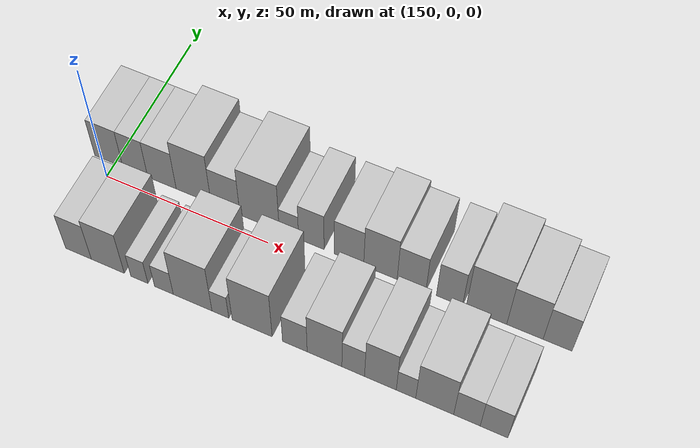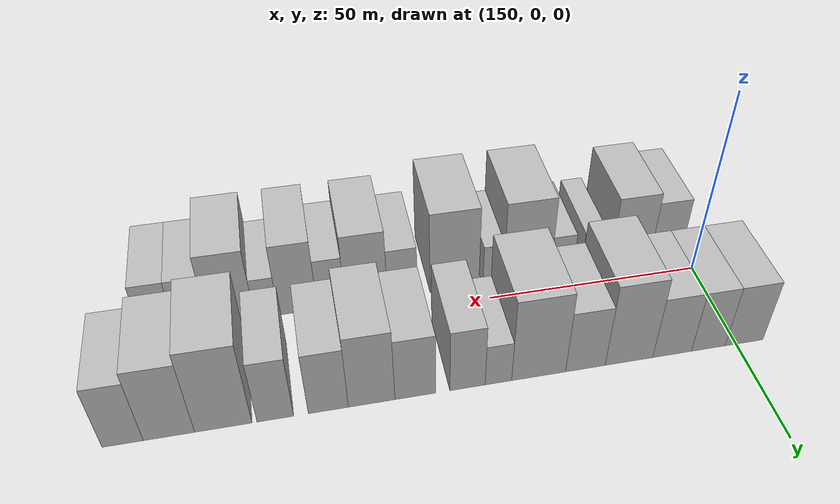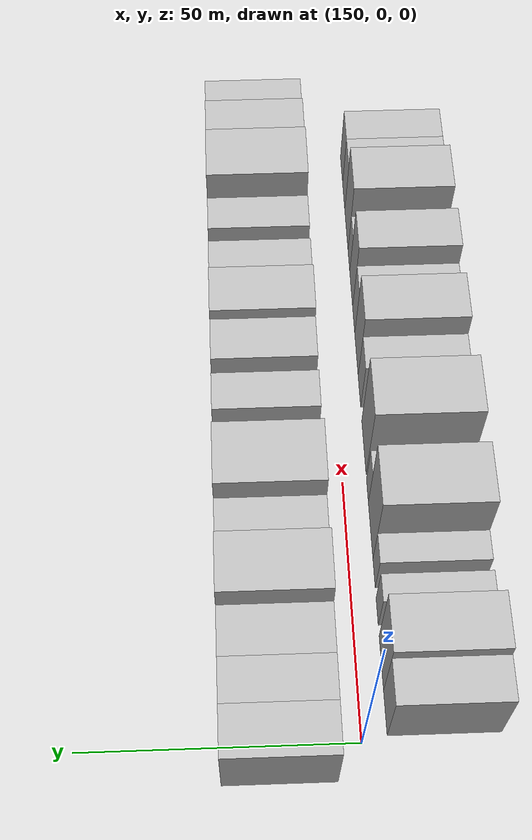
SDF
<sdf version="1.6">
 <world name="default">
  <model name="building_15">
   <static>1</static>
   <pose>148.0838 14.5000 0 0.000000 0.000000 1.570796</pose>
   <link name="link">
    <pose>0 0 9.00 0 0 0</pose>
    <collision name="collision"><geometry><box><size>20.0000 8.9965 18.0000</size></box></geometry></collision>
    <visual name="visual">
     <cast_shadows>0</cast_shadows>
     <geometry><box><size>20.0000 8.9965 18.0000</size></box></geometry>
     <material>
      <script>
       <uri>model://HANNAS_wall/materials/scripts</uri>
       <uri>model://HANNAS_wall/materials/textures</uri>
       <name>vrc/HANNAS_wall</name>
      </script>
     </material>
    </visual>
   </link>
  </model>
  <model name="building_16">
   <static>1</static>
   <pose>156.5489 14.5000 0 0.000000 0.000000 1.570796</pose>
   <link name="link">
    <pose>0 0 9.00 0 0 0</pose>
    <collision name="collision"><geometry><box><size>20.0000 7.9337 18.0000</size></box></geometry></collision>
    <visual name="visual">
     <cast_shadows>0</cast_shadows>
     <geometry><box><size>20.0000 7.9337 18.0000</size></box></geometry>
     <material>
      <script>
       <uri>model://HANNAS_wall/materials/scripts</uri>
       <uri>model://HANNAS_wall/materials/textures</uri>
       <name>vrc/HANNAS_wall</name>
      </script>
     </material>
    </visual>
   </link>
  </model>
  <model name="building_17">
   <static>1</static>
   <pose>164.9982 14.5000 0 0.000000 0.000000 1.570796</pose>
   <link name="link">
    <pose>0 0 9.00 0 0 0</pose>
    <collision name="collision"><geometry><box><size>20.0000 8.9649 18.0000</size></box></geometry></collision>
    <visual name="visual">
     <cast_shadows>0</cast_shadows>
     <geometry><box><size>20.0000 8.9649 18.0000</size></box></geometry>
     <material>
      <script>
       <uri>model://HANNAS_wall/materials/scripts</uri>
       <uri>model://HANNAS_wall/materials/textures</uri>
       <name>vrc/HANNAS_wall</name>
      </script>
     </material>
    </visual>
   </link>
  </model>
  <model name="building_18">
   <static>1</static>
   <pose>174.9205 14.5000 0 0.000000 0.000000 1.570796</pose>
   <link name="link">
    <pose>0 0 12.00 0 0 0</pose>
    <collision name="collision"><geometry><box><size>20.0000 10.8797 24.0000</size></box></geometry></collision>
    <visual name="visual">
     <cast_shadows>0</cast_shadows>
     <geometry><box><size>20.0000 10.8797 24.0000</size></box></geometry>
     <material>
      <script>
       <uri>model://HANNAS_wall/materials/scripts</uri>
       <uri>model://HANNAS_wall/materials/textures</uri>
       <name>vrc/HANNAS_wall</name>
      </script>
     </material>
    </visual>
   </link>
  </model>
  <model name="building_19">
   <static>1</static>
   <pose>184.8079 14.5000 0 0.000000 0.000000 1.570796</pose>
   <link name="link">
    <pose>0 0 9.00 0 0 0</pose>
    <collision name="collision"><geometry><box><size>20.0000 8.8950 18.0000</size></box></geometry></collision>
    <visual name="visual">
     <cast_shadows>0</cast_shadows>
     <geometry><box><size>20.0000 8.8950 18.0000</size></box></geometry>
     <material>
      <script>
       <uri>model://HANNAS_wall/materials/scripts</uri>
       <uri>model://HANNAS_wall/materials/textures</uri>
       <name>vrc/HANNAS_wall</name>
      </script>
     </material>
    </visual>
   </link>
  </model>
  <model name="building_20">
   <static>1</static>
   <pose>195.2455 14.5000 0 0.000000 0.000000 1.570796</pose>
   <link name="link">
    <pose>0 0 12.00 0 0 0</pose>
    <collision name="collision"><geometry><box><size>20.0000 11.9803 24.0000</size></box></geometry></collision>
    <visual name="visual">
     <cast_shadows>0</cast_shadows>
     <geometry><box><size>20.0000 11.9803 24.0000</size></box></geometry>
     <material>
      <script>
       <uri>model://HANNAS_wall/materials/scripts</uri>
       <uri>model://HANNAS_wall/materials/textures</uri>
       <name>vrc/HANNAS_wall</name>
      </script>
     </material>
    </visual>
   </link>
  </model>
  <model name="building_21">
   <static>1</static>
   <pose>204.1334 14.5000 0 0.000000 0.000000 1.570796</pose>
   <link name="link">
    <pose>0 0 6.00 0 0 0</pose>
    <collision name="collision"><geometry><box><size>20.0000 5.7955 12.0000</size></box></geometry></collision>
    <visual name="visual">
     <cast_shadows>0</cast_shadows>
     <geometry><box><size>20.0000 5.7955 12.0000</size></box></geometry>
     <material>
      <script>
       <uri>model://HANNAS_wall/materials/scripts</uri>
       <uri>model://HANNAS_wall/materials/textures</uri>
       <name>vrc/HANNAS_wall</name>
      </script>
     </material>
    </visual>
   </link>
  </model>
  <model name="building_22">
   <static>1</static>
   <pose>210.8447 14.5000 0 0.000000 0.000000 1.570796</pose>
   <link name="link">
    <pose>0 0 9.00 0 0 0</pose>
    <collision name="collision"><geometry><box><size>20.0000 7.6272 18.0000</size></box></geometry></collision>
    <visual name="visual">
     <cast_shadows>0</cast_shadows>
     <geometry><box><size>20.0000 7.6272 18.0000</size></box></geometry>
     <material>
      <script>
       <uri>model://HANNAS_wall/materials/scripts</uri>
       <uri>model://HANNAS_wall/materials/textures</uri>
       <name>vrc/HANNAS_wall</name>
      </script>
     </material>
    </visual>
   </link>
  </model>
  <model name="building_23">
   <static>1</static>
   <pose>222.0155 14.5000 0 0.000000 0.000000 1.570796</pose>
   <link name="link">
    <pose>0 0 9.00 0 0 0</pose>
    <collision name="collision"><geometry><box><size>20.0000 8.7144 18.0000</size></box></geometry></collision>
    <visual name="visual">
     <cast_shadows>0</cast_shadows>
     <geometry><box><size>20.0000 8.7144 18.0000</size></box></geometry>
     <material>
      <script>
       <uri>model://HANNAS_wall/materials/scripts</uri>
       <uri>model://HANNAS_wall/materials/textures</uri>
       <name>vrc/HANNAS_wall</name>
      </script>
     </material>
    </visual>
   </link>
  </model>
  <model name="building_24">
   <static>1</static>
   <pose>231.2629 14.5000 0 0.000000 0.000000 1.570796</pose>
   <link name="link">
    <pose>0 0 10.50 0 0 0</pose>
    <collision name="collision"><geometry><box><size>20.0000 9.7805 21.0000</size></box></geometry></collision>
    <visual name="visual">
     <cast_shadows>0</cast_shadows>
     <geometry><box><size>20.0000 9.7805 21.0000</size></box></geometry>
     <material>
      <script>
       <uri>model://HANNAS_wall/materials/scripts</uri>
       <uri>model://HANNAS_wall/materials/textures</uri>
       <name>vrc/HANNAS_wall</name>
      </script>
     </material>
    </visual>
   </link>
  </model>
  <model name="building_25">
   <static>1</static>
   <pose>240.3003 14.5000 0 0.000000 0.000000 1.570796</pose>
   <link name="link">
    <pose>0 0 9.00 0 0 0</pose>
    <collision name="collision"><geometry><box><size>20.0000 8.2943 18.0000</size></box></geometry></collision>
    <visual name="visual">
     <cast_shadows>0</cast_shadows>
     <geometry><box><size>20.0000 8.2943 18.0000</size></box></geometry>
     <material>
      <script>
       <uri>model://HANNAS_wall/materials/scripts</uri>
       <uri>model://HANNAS_wall/materials/textures</uri>
       <name>vrc/HANNAS_wall</name>
      </script>
     </material>
    </visual>
   </link>
  </model>
  <model name="building_26">
   <static>1</static>
   <pose>251.1768 14.5000 0 0.000000 0.000000 1.570796</pose>
   <link name="link">
    <pose>0 0 9.00 0 0 0</pose>
    <collision name="collision"><geometry><box><size>20.0000 7.4587 18.0000</size></box></geometry></collision>
    <visual name="visual">
     <cast_shadows>0</cast_shadows>
     <geometry><box><size>20.0000 7.4587 18.0000</size></box></geometry>
     <material>
      <script>
       <uri>model://HANNAS_wall/materials/scripts</uri>
       <uri>model://HANNAS_wall/materials/textures</uri>
       <name>vrc/HANNAS_wall</name>
      </script>
     </material>
    </visual>
   </link>
  </model>
  <model name="building_27">
   <static>1</static>
   <pose>261.6491 14.5000 0 0.000000 0.000000 1.570796</pose>
   <link name="link">
    <pose>0 0 12.00 0 0 0</pose>
    <collision name="collision"><geometry><box><size>20.0000 11.4858 24.0000</size></box></geometry></collision>
    <visual name="visual">
     <cast_shadows>0</cast_shadows>
     <geometry><box><size>20.0000 11.4858 24.0000</size></box></geometry>
     <material>
      <script>
       <uri>model://HANNAS_wall/materials/scripts</uri>
       <uri>model://HANNAS_wall/materials/textures</uri>
       <name>vrc/HANNAS_wall</name>
      </script>
     </material>
    </visual>
   </link>
  </model>
  <model name="building_28">
   <static>1</static>
   <pose>272.4501 14.5000 0 0.000000 0.000000 1.570796</pose>
   <link name="link">
    <pose>0 0 10.50 0 0 0</pose>
    <collision name="collision"><geometry><box><size>20.0000 10.1163 21.0000</size></box></geometry></collision>
    <visual name="visual">
     <cast_shadows>0</cast_shadows>
     <geometry><box><size>20.0000 10.1163 21.0000</size></box></geometry>
     <material>
      <script>
       <uri>model://HANNAS_wall/materials/scripts</uri>
       <uri>model://HANNAS_wall/materials/textures</uri>
       <name>vrc/HANNAS_wall</name>
      </script>
     </material>
    </visual>
   </link>
  </model>
  <model name="building_29">
   <static>1</static>
   <pose>281.5055 14.5000 0 0.000000 0.000000 1.570796</pose>
   <link name="link">
    <pose>0 0 9.00 0 0 0</pose>
    <collision name="collision"><geometry><box><size>20.0000 7.9945 18.0000</size></box></geometry></collision>
    <visual name="visual">
     <cast_shadows>0</cast_shadows>
     <geometry><box><size>20.0000 7.9945 18.0000</size></box></geometry>
     <material>
      <script>
       <uri>model://HANNAS_wall/materials/scripts</uri>
       <uri>model://HANNAS_wall/materials/textures</uri>
       <name>vrc/HANNAS_wall</name>
      </script>
     </material>
    </visual>
   </link>
  </model>
  <model name="building_44">
   <static>1</static>
   <pose>155.1992 -14.5000 0 0.000000 0.000000 1.570796</pose>
   <link name="link">
    <pose>0 0 9.00 0 0 0</pose>
    <collision name="collision"><geometry><box><size>20.0000 7.9702 18.0000</size></box></geometry></collision>
    <visual name="visual">
     <cast_shadows>0</cast_shadows>
     <geometry><box><size>20.0000 7.9702 18.0000</size></box></geometry>
     <material>
      <script>
       <uri>model://HANNAS_wall/materials/scripts</uri>
       <uri>model://HANNAS_wall/materials/textures</uri>
       <name>vrc/HANNAS_wall</name>
      </script>
     </material>
    </visual>
   </link>
  </model>
  <model name="building_45">
   <static>1</static>
   <pose>164.2384 -14.5000 0 0.000000 0.000000 1.570796</pose>
   <link name="link">
    <pose>0 0 10.50 0 0 0</pose>
    <collision name="collision"><geometry><box><size>20.0000 10.1082 21.0000</size></box></geometry></collision>
    <visual name="visual">
     <cast_shadows>0</cast_shadows>
     <geometry><box><size>20.0000 10.1082 21.0000</size></box></geometry>
     <material>
      <script>
       <uri>model://HANNAS_wall/materials/scripts</uri>
       <uri>model://HANNAS_wall/materials/textures</uri>
       <name>vrc/HANNAS_wall</name>
      </script>
     </material>
    </visual>
   </link>
  </model>
  <model name="building_46">
   <static>1</static>
   <pose>173.8898 -14.5000 0 0.000000 0.000000 1.570796</pose>
   <link name="link">
    <pose>0 0 6.00 0 0 0</pose>
    <collision name="collision"><geometry><box><size>20.0000 5.1945 12.0000</size></box></geometry></collision>
    <visual name="visual">
     <cast_shadows>0</cast_shadows>
     <geometry><box><size>20.0000 5.1945 12.0000</size></box></geometry>
     <material>
      <script>
       <uri>model://HANNAS_wall/materials/scripts</uri>
       <uri>model://HANNAS_wall/materials/textures</uri>
       <name>vrc/HANNAS_wall</name>
      </script>
     </material>
    </visual>
   </link>
  </model>
  <model name="building_47">
   <static>1</static>
   <pose>181.3104 -14.5000 0 0.000000 0.000000 1.570796</pose>
   <link name="link">
    <pose>0 0 6.00 0 0 0</pose>
    <collision name="collision"><geometry><box><size>20.0000 5.6467 12.0000</size></box></geometry></collision>
    <visual name="visual">
     <cast_shadows>0</cast_shadows>
     <geometry><box><size>20.0000 5.6467 12.0000</size></box></geometry>
     <material>
      <script>
       <uri>model://HANNAS_wall/materials/scripts</uri>
       <uri>model://HANNAS_wall/materials/textures</uri>
       <name>vrc/HANNAS_wall</name>
      </script>
     </material>
    </visual>
   </link>
  </model>
  <model name="building_48">
   <static>1</static>
   <pose>189.8992 -14.5000 0 0.000000 0.000000 1.570796</pose>
   <link name="link">
    <pose>0 0 12.00 0 0 0</pose>
    <collision name="collision"><geometry><box><size>20.0000 11.5308 24.0000</size></box></geometry></collision>
    <visual name="visual">
     <cast_shadows>0</cast_shadows>
     <geometry><box><size>20.0000 11.5308 24.0000</size></box></geometry>
     <material>
      <script>
       <uri>model://HANNAS_wall/materials/scripts</uri>
       <uri>model://HANNAS_wall/materials/textures</uri>
       <name>vrc/HANNAS_wall</name>
      </script>
     </material>
    </visual>
   </link>
  </model>
  <model name="building_49">
   <static>1</static>
   <pose>198.1417 -14.5000 0 0.000000 0.000000 1.570796</pose>
   <link name="link">
    <pose>0 0 6.00 0 0 0</pose>
    <collision name="collision"><geometry><box><size>20.0000 4.9543 12.0000</size></box></geometry></collision>
    <visual name="visual">
     <cast_shadows>0</cast_shadows>
     <geometry><box><size>20.0000 4.9543 12.0000</size></box></geometry>
     <material>
      <script>
       <uri>model://HANNAS_wall/materials/scripts</uri>
       <uri>model://HANNAS_wall/materials/textures</uri>
       <name>vrc/HANNAS_wall</name>
      </script>
     </material>
    </visual>
   </link>
  </model>
  <model name="building_50">
   <static>1</static>
   <pose>207.4481 -14.5000 0 0.000000 0.000000 1.570796</pose>
   <link name="link">
    <pose>0 0 12.00 0 0 0</pose>
    <collision name="collision"><geometry><box><size>20.0000 11.6585 24.0000</size></box></geometry></collision>
    <visual name="visual">
     <cast_shadows>0</cast_shadows>
     <geometry><box><size>20.0000 11.6585 24.0000</size></box></geometry>
     <material>
      <script>
       <uri>model://HANNAS_wall/materials/scripts</uri>
       <uri>model://HANNAS_wall/materials/textures</uri>
       <name>vrc/HANNAS_wall</name>
      </script>
     </material>
    </visual>
   </link>
  </model>
  <model name="building_51">
   <static>1</static>
   <pose>219.8148 -14.5000 0 0.000000 0.000000 1.570796</pose>
   <link name="link">
    <pose>0 0 7.50 0 0 0</pose>
    <collision name="collision"><geometry><box><size>20.0000 7.0749 15.0000</size></box></geometry></collision>
    <visual name="visual">
     <cast_shadows>0</cast_shadows>
     <geometry><box><size>20.0000 7.0749 15.0000</size></box></geometry>
     <material>
      <script>
       <uri>model://HANNAS_wall/materials/scripts</uri>
       <uri>model://HANNAS_wall/materials/textures</uri>
       <name>vrc/HANNAS_wall</name>
      </script>
     </material>
    </visual>
   </link>
  </model>
  <model name="building_52">
   <static>1</static>
   <pose>228.2957 -14.5000 0 0.000000 0.000000 1.570796</pose>
   <link name="link">
    <pose>0 0 10.50 0 0 0</pose>
    <collision name="collision"><geometry><box><size>20.0000 9.8869 21.0000</size></box></geometry></collision>
    <visual name="visual">
     <cast_shadows>0</cast_shadows>
     <geometry><box><size>20.0000 9.8869 21.0000</size></box></geometry>
     <material>
      <script>
       <uri>model://HANNAS_wall/materials/scripts</uri>
       <uri>model://HANNAS_wall/materials/textures</uri>
       <name>vrc/HANNAS_wall</name>
      </script>
     </material>
    </visual>
   </link>
  </model>
  <model name="building_53">
   <static>1</static>
   <pose>236.4265 -14.5000 0 0.000000 0.000000 1.570796</pose>
   <link name="link">
    <pose>0 0 7.50 0 0 0</pose>
    <collision name="collision"><geometry><box><size>20.0000 6.3746 15.0000</size></box></geometry></collision>
    <visual name="visual">
     <cast_shadows>0</cast_shadows>
     <geometry><box><size>20.0000 6.3746 15.0000</size></box></geometry>
     <material>
      <script>
       <uri>model://HANNAS_wall/materials/scripts</uri>
       <uri>model://HANNAS_wall/materials/textures</uri>
       <name>vrc/HANNAS_wall</name>
      </script>
     </material>
    </visual>
   </link>
  </model>
  <model name="building_54">
   <static>1</static>
   <pose>244.0509 -14.5000 0 0.000000 0.000000 1.570796</pose>
   <link name="link">
    <pose>0 0 10.50 0 0 0</pose>
    <collision name="collision"><geometry><box><size>20.0000 8.8743 21.0000</size></box></geometry></collision>
    <visual name="visual">
     <cast_shadows>0</cast_shadows>
     <geometry><box><size>20.0000 8.8743 21.0000</size></box></geometry>
     <material>
      <script>
       <uri>model://HANNAS_wall/materials/scripts</uri>
       <uri>model://HANNAS_wall/materials/textures</uri>
       <name>vrc/HANNAS_wall</name>
      </script>
     </material>
    </visual>
   </link>
  </model>
  <model name="building_55">
   <static>1</static>
   <pose>251.1742 -14.5000 0 0.000000 0.000000 1.570796</pose>
   <link name="link">
    <pose>0 0 6.00 0 0 0</pose>
    <collision name="collision"><geometry><box><size>20.0000 5.3723 12.0000</size></box></geometry></collision>
    <visual name="visual">
     <cast_shadows>0</cast_shadows>
     <geometry><box><size>20.0000 5.3723 12.0000</size></box></geometry>
     <material>
      <script>
       <uri>model://HANNAS_wall/materials/scripts</uri>
       <uri>model://HANNAS_wall/materials/textures</uri>
       <name>vrc/HANNAS_wall</name>
      </script>
     </material>
    </visual>
   </link>
  </model>
  <model name="building_56">
   <static>1</static>
   <pose>259.0595 -14.5000 0 0.000000 0.000000 1.570796</pose>
   <link name="link">
    <pose>0 0 10.50 0 0 0</pose>
    <collision name="collision"><geometry><box><size>20.0000 10.3983 21.0000</size></box></geometry></collision>
    <visual name="visual">
     <cast_shadows>0</cast_shadows>
     <geometry><box><size>20.0000 10.3983 21.0000</size></box></geometry>
     <material>
      <script>
       <uri>model://HANNAS_wall/materials/scripts</uri>
       <uri>model://HANNAS_wall/materials/textures</uri>
       <name>vrc/HANNAS_wall</name>
      </script>
     </material>
    </visual>
   </link>
  </model>
  <model name="building_57">
   <static>1</static>
   <pose>267.8588 -14.5000 0 0.000000 0.000000 1.570796</pose>
   <link name="link">
    <pose>0 0 7.50 0 0 0</pose>
    <collision name="collision"><geometry><box><size>20.0000 7.2004 15.0000</size></box></geometry></collision>
    <visual name="visual">
     <cast_shadows>0</cast_shadows>
     <geometry><box><size>20.0000 7.2004 15.0000</size></box></geometry>
     <material>
      <script>
       <uri>model://HANNAS_wall/materials/scripts</uri>
       <uri>model://HANNAS_wall/materials/textures</uri>
       <name>vrc/HANNAS_wall</name>
      </script>
     </material>
    </visual>
   </link>
  </model>
  <model name="building_58">
   <static>1</static>
   <pose>275.1738 -14.5000 0 0.000000 0.000000 1.570796</pose>
   <link name="link">
    <pose>0 0 7.50 0 0 0</pose>
    <collision name="collision"><geometry><box><size>20.0000 7.4295 15.0000</size></box></geometry></collision>
    <visual name="visual">
     <cast_shadows>0</cast_shadows>
     <geometry><box><size>20.0000 7.4295 15.0000</size></box></geometry>
     <material>
      <script>
       <uri>model://HANNAS_wall/materials/scripts</uri>
       <uri>model://HANNAS_wall/materials/textures</uri>
       <name>vrc/HANNAS_wall</name>
      </script>
     </material>
    </visual>
   </link>
  </model>
 </world>
</sdf>
